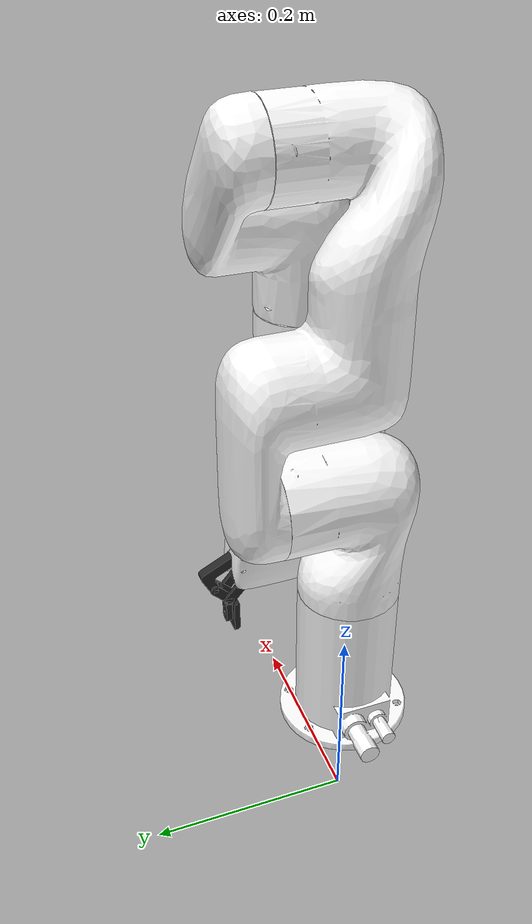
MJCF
<mujoco model="xarm6">
  <compiler angle="radian" autolimits="true"/>

  <option integrator="implicitfast"/>

  <!-- Meshes referenced from xarm_description to avoid duplication -->
  <asset>
    <material name="white" rgba="1 1 1 1"/>
    <material name="gray" rgba="0.753 0.753 0.753 1"/>
    <material name="black" rgba="0.149 0.149 0.149 1"/>

    <!-- Arm links from xarm_description/meshes/xarm6/visual/ -->
    <mesh file="../../../../hardware/manipulators/xarm/xarm_description/meshes/xarm6/visual/link_base.stl" name="link_base"/>
    <mesh file="../../../../hardware/manipulators/xarm/xarm_description/meshes/xarm6/visual/link1.stl" name="link1"/>
    <mesh file="../../../../hardware/manipulators/xarm/xarm_description/meshes/xarm6/visual/link2.stl" name="link2"/>
    <mesh file="../../../../hardware/manipulators/xarm/xarm_description/meshes/xarm6/visual/link3.stl" name="link3"/>
    <mesh file="../../../../hardware/manipulators/xarm/xarm_description/meshes/xarm6/visual/link4.stl" name="link4"/>
    <mesh file="../../../../hardware/manipulators/xarm/xarm_description/meshes/xarm6/visual/link5.stl" name="link5"/>
    <mesh file="../../../../hardware/manipulators/xarm/xarm_description/meshes/xarm6/visual/link6.stl" name="link6"/>

    <!-- Gripper parts from xarm_description/meshes/gripper/xarm/ -->
    <mesh file="../../../../hardware/manipulators/xarm/xarm_description/meshes/gripper/xarm/base_link.stl" name="base_link"/>
    <mesh file="../../../../hardware/manipulators/xarm/xarm_description/meshes/gripper/xarm/left_outer_knuckle.stl" name="left_outer_knuckle"/>
    <mesh file="../../../../hardware/manipulators/xarm/xarm_description/meshes/gripper/xarm/left_finger.stl" name="left_finger"/>
    <mesh file="../../../../hardware/manipulators/xarm/xarm_description/meshes/gripper/xarm/left_inner_knuckle.stl" name="left_inner_knuckle"/>
    <mesh file="../../../../hardware/manipulators/xarm/xarm_description/meshes/gripper/xarm/right_outer_knuckle.stl" name="right_outer_knuckle"/>
    <mesh file="../../../../hardware/manipulators/xarm/xarm_description/meshes/gripper/xarm/right_finger.stl" name="right_finger"/>
    <mesh file="../../../../hardware/manipulators/xarm/xarm_description/meshes/gripper/xarm/right_inner_knuckle.stl" name="right_inner_knuckle"/>
  </asset>

  <default>
    <default class="xarm6">
      <geom type="mesh" material="white"/>
      <joint axis="0 0 1" armature="0.1" range="-6.28319 6.28319" frictionloss="1"/>
      <general biastype="affine" ctrlrange="-6.28319 6.28319"/>
      <default class="size1">
        <joint damping="10"/>
        <general gainprm="1500" biasprm="0 -1500 -150" forcerange="-50 50"/>
      </default>
      <default class="size2">
        <joint damping="5"/>
        <general gainprm="1000" biasprm="0 -1000 -100" forcerange="-32 32"/>
      </default>
      <default class="size3">
        <joint damping="2"/>
        <general gainprm="800" biasprm="0 -800 -80" forcerange="-20 20"/>
      </default>
      <default class="spring_link">
        <joint range="0 0.85" stiffness="0.05" springref="2.62" damping="0.00125"/>
      </default>
      <default class="driver">
        <joint range="0 0.85" armature="0.005" damping="0.1" solreflimit="0.005 1"/>
      </default>
      <default class="follower">
        <joint range="0 0.85" solreflimit="0.005 1"/>
      </default>
      <default class="visual">
        <geom type="mesh" contype="0" conaffinity="0" group="2"/>
      </default>
      <default class="collision">
        <geom type="mesh" group="3"/>
        <default class="pad_box1">
          <geom type="box" friction="0.7" solimp="0.95 0.99 0.001" solref="0.004 1" mass="0" priority="1" size="0.015 0.002 0.0095" rgba="0.0 0.1 0.7 1"/>
        </default>
        <default class="pad_box2">
          <geom type="box" friction="0.6" solimp="0.95 0.99 0.001" solref="0.004 1" mass="0" priority="1" size="0.015 0.002 0.0095" rgba="0.0 0.5 0.5 1"/>
        </default>
      </default>
      <site size="0.001" rgba="1 0 0 1" group="4"/>
    </default>
  </default>

  <worldbody>
    <body name="link_base" pos="0 0 .12" childclass="xarm6">
      <inertial pos="0 0 0.09103" mass="2.7"
        diaginertia="0.00494875 0.00494174 0.002219"/>
      <geom mesh="link_base"/>
      <!-- joint1: xyz=(0, 0, 0.267), rpy=(0, 0, 0) -->
      <body name="link1" pos="0 0 0.267">
        <inertial pos="-0.0002 0.02905 -0.01233" quat="0.978953 -0.202769 -0.00441617 -0.0227264" mass="2.382"
          diaginertia="0.00569127 0.00533384 0.00293865"/>
        <joint name="joint1" class="size1"/>
        <geom mesh="link1"/>
        <!-- joint2: xyz=(0, 0, 0), rpy=(-1.5708, 0, 0) -> quat for -90deg X rotation -->
        <body name="link2" quat="0.7071068 -0.7071068 0 0">
          <inertial pos="0.00022 -0.12856 0.01735" quat="0.50198 0.86483 -0.00778841 0.00483285" mass="1.869"
            diaginertia="0.00959898 0.00937717 0.00201315"/>
          <joint name="joint2" range="-2.059 2.0944" class="size1"/>
          <geom mesh="link2"/>
          <!-- joint3: xyz=(0.0535, -0.2845, 0), rpy=(0, 0, 0) -> NO rotation, just position -->
          <body name="link3" pos="0.0535 -0.2845 0">
            <inertial pos="0.0466 -0.02463 -0.00768" quat="0.913819 0.289775 0.281481 -0.0416455" mass="1.6383"
              diaginertia="0.00351721 0.00294089 0.00195868"/>
            <joint name="joint3" range="-3.927 0.19198" class="size2"/>
            <geom mesh="link3"/>
            <!-- joint4: xyz=(0.0775, 0.3425, 0), rpy=(-1.5708, 0, 0) -> quat for -90deg X -->
            <body name="link4" pos="0.0775 0.3425 0" quat="0.7071068 -0.7071068 0 0">
              <inertial pos="0.07047 -0.11575 0.012" quat="0.422108 0.852026 -0.126025 0.282832" mass="1.7269"
                diaginertia="0.00657137 0.00647948 0.00186763"/>
              <joint name="joint4" class="size2"/>
              <geom mesh="link4"/>
              <!-- joint5: xyz=(0, 0, 0), rpy=(1.5708, 0, 0) -> quat for +90deg X -->
              <body name="link5" quat="0.7071068 0.7071068 0 0">
                <inertial pos="-0.00032 0.01604 -0.026" quat="0.999311 -0.0304457 0.000577067 0.0212082" mass="1.3203"
                  diaginertia="0.00534729 0.00499076 0.0013489"/>
                <joint name="joint5" range="-1.69297 3.14159" class="size2"/>
                <geom mesh="link5"/>
                <!-- joint6: xyz=(0.076, 0.097, 0), rpy=(-1.5708, 0, 0) -> quat for -90deg X -->
                <body name="link6" pos="0.076 0.097 0" quat="0.7071068 -0.7071068 0 0">
                  <inertial pos="0 -0.00677 -0.01098" quat="0.487612 0.512088 -0.512088 0.487612" mass="0.17"
                    diaginertia="0.000132176 9.3e-05 5.85236e-05"/>
                  <joint name="joint6" class="size3"/>
                  <geom material="gray" mesh="link6"/>
                  <body name="xarm_gripper_base_link" quat="0 0 0 1">
                    <inertial pos="-0.00065489 -0.0018497 0.048028" quat="0.997403 -0.0717512 -0.0061836 0.000477479"
                      mass="0.54156" diaginertia="0.000471093 0.000332307 0.000254799"/>
                    <geom mesh="base_link"/>
                    <body name="left_outer_knuckle" pos="0 0.035 0.059098">
                      <inertial pos="0 0.021559 0.015181" quat="0.47789 0.87842 0 0" mass="0.033618"
                        diaginertia="1.9111e-05 1.79089e-05 1.90167e-06"/>
                      <joint name="left_driver_joint" axis="1 0 0" class="driver"/>
                      <geom material="black" mesh="left_outer_knuckle"/>
                      <body name="left_finger" pos="0 0.035465 0.042039">
                        <inertial pos="0 -0.016413 0.029258" quat="0.697634 0.115353 -0.115353 0.697634"
                          mass="0.048304" diaginertia="1.88037e-05 1.7493e-05 3.56792e-06"/>
                        <joint name="left_finger_joint" axis="-1 0 0" class="follower"/>
                        <geom class="visual" material="black" mesh="left_finger"/>
                        <geom class="pad_box1" name="left_finger_pad_1" pos="0 -0.024003 0.032"/>
                        <geom class="pad_box2" name="left_finger_pad_2" pos="0 -0.024003 0.050"/>
                      </body>
                    </body>
                    <body name="left_inner_knuckle" pos="0 0.02 0.074098">
                      <inertial pos="1.86601e-06 0.0220468 0.0261335" quat="0.664139 -0.242732 0.242713 0.664146"
                        mass="0.0230126" diaginertia="8.34216e-06 6.0949e-06 2.75601e-06"/>
                      <joint name="left_inner_knuckle_joint" axis="1 0 0" class="spring_link"/>
                      <geom material="black" mesh="left_inner_knuckle"/>
                    </body>
                    <body name="right_outer_knuckle" pos="0 -0.035 0.059098">
                      <inertial pos="0 -0.021559 0.015181" quat="0.87842 0.47789 0 0" mass="0.033618"
                        diaginertia="1.9111e-05 1.79089e-05 1.90167e-06"/>
                      <joint name="right_driver_joint" axis="-1 0 0" class="driver"/>
                      <geom material="black" mesh="right_outer_knuckle"/>
                      <body name="right_finger" pos="0 -0.035465 0.042039">
                        <inertial pos="0 0.016413 0.029258" quat="0.697634 -0.115356 0.115356 0.697634"
                          mass="0.048304" diaginertia="1.88038e-05 1.7493e-05 3.56779e-06"/>
                        <joint name="right_finger_joint" axis="1 0 0" class="follower"/>
                        <geom class="visual" material="black" mesh="right_finger"/>
                        <geom class="pad_box1" name="right_finger_pad_1" pos="0 0.024003 0.032"/>
                        <geom class="pad_box2" name="right_finger_pad_2" pos="0 0.024003 0.050"/>
                      </body>
                    </body>
                    <body name="right_inner_knuckle" pos="0 -0.02 0.074098">
                      <inertial pos="1.866e-06 -0.022047 0.026133" quat="0.66415 0.242702 -0.242721 0.664144"
                        mass="0.023013" diaginertia="8.34209e-06 6.0949e-06 2.75601e-06"/>
                      <joint name="right_inner_knuckle_joint" axis="-1 0 0" class="spring_link"/>
                      <geom material="black" mesh="right_inner_knuckle"/>
                    </body>
                    <site name="link_tcp" pos="0 0 .172"/>
                  </body>
                </body>
              </body>
            </body>
          </body>
        </body>
      </body>
    </body>
  </worldbody>

  <contact>
    <exclude body1="right_inner_knuckle" body2="right_outer_knuckle"/>
    <exclude body1="right_inner_knuckle" body2="right_finger"/>
    <exclude body1="left_inner_knuckle" body2="left_outer_knuckle"/>
    <exclude body1="left_inner_knuckle" body2="left_finger"/>
  </contact>

  <tendon>
    <fixed name="split">
      <joint joint="right_driver_joint" coef="0.5"/>
      <joint joint="left_driver_joint" coef="0.5"/>
    </fixed>
  </tendon>

  <equality>
    <connect anchor="0 0.015 0.015" body1="right_finger" body2="right_inner_knuckle" solref="0.005 1"/>
    <connect anchor="0 -0.015 0.015" body1="left_finger" body2="left_inner_knuckle" solref="0.005 1"/>
    <joint joint1="left_driver_joint" joint2="right_driver_joint" polycoef="0 1 0 0 0" solref="0.005 1"/>
  </equality>

  <actuator>
    <general name="act1" joint="joint1" class="size1"/>
    <general name="act2" joint="joint2" class="size1" ctrlrange="-2.059 2.0944"/>
    <general name="act3" joint="joint3" class="size2" ctrlrange="-3.927 0.19198"/>
    <general name="act4" joint="joint4" class="size2"/>
    <general name="act5" joint="joint5" class="size2" ctrlrange="-1.69297 3.14159"/>
    <general name="act6" joint="joint6" class="size3"/>
    <general name="gripper" tendon="split" forcerange="-50 50" ctrlrange="0 255" biastype="affine" gainprm="0.333"
      biasprm="0 -100 -10"/>
  </actuator>

  <keyframe>
    <key name="home" qpos="0 0 0 0 0 0 0 0 0 0 0 0" ctrl="0 0 0 0 0 0 0"/>
  </keyframe>
</mujoco>
